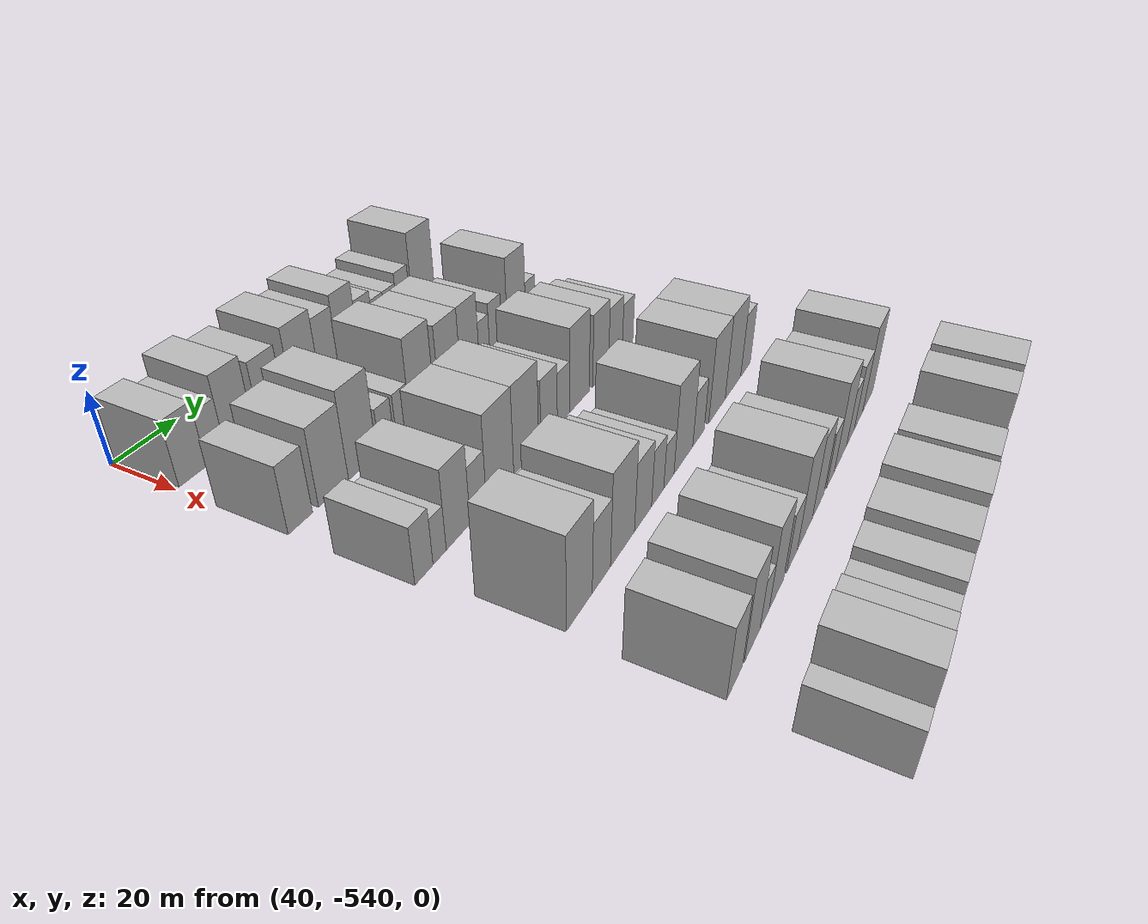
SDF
<sdf version="1.6">
 <world name="default">
  <model name="building_1">
   <static>1</static>
   <pose>50.0000 -534.7649 0 0.000000 0.000000 0.000000</pose>
   <link name="link">
    <pose>0 0 9.00 0 0 0</pose>
    <collision name="collision"><geometry><box><size>20.0000 8.4702 18.0000</size></box></geometry></collision>
    <visual name="visual">
     <cast_shadows>0</cast_shadows>
     <geometry><box><size>20.0000 8.4702 18.0000</size></box></geometry>
     <material>
      <script>
       <uri>model://HANNAS_wall/materials/scripts</uri>
       <uri>model://HANNAS_wall/materials/textures</uri>
       <name>vrc/HANNAS_wall</name>
      </script>
     </material>
    </visual>
   </link>
  </model>
  <model name="building_2">
   <static>1</static>
   <pose>50.0000 -527.4299 0 0.000000 0.000000 0.000000</pose>
   <link name="link">
    <pose>0 0 7.50 0 0 0</pose>
    <collision name="collision"><geometry><box><size>20.0000 6.1998 15.0000</size></box></geometry></collision>
    <visual name="visual">
     <cast_shadows>0</cast_shadows>
     <geometry><box><size>20.0000 6.1998 15.0000</size></box></geometry>
     <material>
      <script>
       <uri>model://HANNAS_wall/materials/scripts</uri>
       <uri>model://HANNAS_wall/materials/textures</uri>
       <name>vrc/HANNAS_wall</name>
      </script>
     </material>
    </visual>
   </link>
  </model>
  <model name="building_3">
   <static>1</static>
   <pose>50.0000 -519.6073 0 0.000000 0.000000 0.000000</pose>
   <link name="link">
    <pose>0 0 10.50 0 0 0</pose>
    <collision name="collision"><geometry><box><size>20.0000 9.4454 21.0000</size></box></geometry></collision>
    <visual name="visual">
     <cast_shadows>0</cast_shadows>
     <geometry><box><size>20.0000 9.4454 21.0000</size></box></geometry>
     <material>
      <script>
       <uri>model://HANNAS_wall/materials/scripts</uri>
       <uri>model://HANNAS_wall/materials/textures</uri>
       <name>vrc/HANNAS_wall</name>
      </script>
     </material>
    </visual>
   </link>
  </model>
  <model name="building_4">
   <static>1</static>
   <pose>50.0000 -508.4007 0 0.000000 0.000000 0.000000</pose>
   <link name="link">
    <pose>0 0 9.00 0 0 0</pose>
    <collision name="collision"><geometry><box><size>20.0000 8.9678 18.0000</size></box></geometry></collision>
    <visual name="visual">
     <cast_shadows>0</cast_shadows>
     <geometry><box><size>20.0000 8.9678 18.0000</size></box></geometry>
     <material>
      <script>
       <uri>model://HANNAS_wall/materials/scripts</uri>
       <uri>model://HANNAS_wall/materials/textures</uri>
       <name>vrc/HANNAS_wall</name>
      </script>
     </material>
    </visual>
   </link>
  </model>
  <model name="building_5">
   <static>1</static>
   <pose>50.0000 -495.6780 0 0.000000 0.000000 0.000000</pose>
   <link name="link">
    <pose>0 0 10.50 0 0 0</pose>
    <collision name="collision"><geometry><box><size>20.0000 10.4776 21.0000</size></box></geometry></collision>
    <visual name="visual">
     <cast_shadows>0</cast_shadows>
     <geometry><box><size>20.0000 10.4776 21.0000</size></box></geometry>
     <material>
      <script>
       <uri>model://HANNAS_wall/materials/scripts</uri>
       <uri>model://HANNAS_wall/materials/textures</uri>
       <name>vrc/HANNAS_wall</name>
      </script>
     </material>
    </visual>
   </link>
  </model>
  <model name="building_6">
   <static>1</static>
   <pose>50.0000 -486.5109 0 0.000000 0.000000 0.000000</pose>
   <link name="link">
    <pose>0 0 9.00 0 0 0</pose>
    <collision name="collision"><geometry><box><size>20.0000 7.8567 18.0000</size></box></geometry></collision>
    <visual name="visual">
     <cast_shadows>0</cast_shadows>
     <geometry><box><size>20.0000 7.8567 18.0000</size></box></geometry>
     <material>
      <script>
       <uri>model://HANNAS_wall/materials/scripts</uri>
       <uri>model://HANNAS_wall/materials/textures</uri>
       <name>vrc/HANNAS_wall</name>
      </script>
     </material>
    </visual>
   </link>
  </model>
  <model name="building_7">
   <static>1</static>
   <pose>50.0000 -478.2406 0 0.000000 0.000000 0.000000</pose>
   <link name="link">
    <pose>0 0 10.50 0 0 0</pose>
    <collision name="collision"><geometry><box><size>20.0000 8.6838 21.0000</size></box></geometry></collision>
    <visual name="visual">
     <cast_shadows>0</cast_shadows>
     <geometry><box><size>20.0000 8.6838 21.0000</size></box></geometry>
     <material>
      <script>
       <uri>model://HANNAS_wall/materials/scripts</uri>
       <uri>model://HANNAS_wall/materials/textures</uri>
       <name>vrc/HANNAS_wall</name>
      </script>
     </material>
    </visual>
   </link>
  </model>
  <model name="building_8">
   <static>1</static>
   <pose>50.0000 -470.4626 0 0.000000 0.000000 0.000000</pose>
   <link name="link">
    <pose>0 0 7.50 0 0 0</pose>
    <collision name="collision"><geometry><box><size>20.0000 6.8724 15.0000</size></box></geometry></collision>
    <visual name="visual">
     <cast_shadows>0</cast_shadows>
     <geometry><box><size>20.0000 6.8724 15.0000</size></box></geometry>
     <material>
      <script>
       <uri>model://HANNAS_wall/materials/scripts</uri>
       <uri>model://HANNAS_wall/materials/textures</uri>
       <name>vrc/HANNAS_wall</name>
      </script>
     </material>
    </visual>
   </link>
  </model>
  <model name="building_9">
   <static>1</static>
   <pose>50.0000 -464.2918 0 0.000000 0.000000 0.000000</pose>
   <link name="link">
    <pose>0 0 6.00 0 0 0</pose>
    <collision name="collision"><geometry><box><size>20.0000 5.4692 12.0000</size></box></geometry></collision>
    <visual name="visual">
     <cast_shadows>0</cast_shadows>
     <geometry><box><size>20.0000 5.4692 12.0000</size></box></geometry>
     <material>
      <script>
       <uri>model://HANNAS_wall/materials/scripts</uri>
       <uri>model://HANNAS_wall/materials/textures</uri>
       <name>vrc/HANNAS_wall</name>
      </script>
     </material>
    </visual>
   </link>
  </model>
  <model name="building_10">
   <static>1</static>
   <pose>50.0000 -458.6943 0 0.000000 0.000000 0.000000</pose>
   <link name="link">
    <pose>0 0 6.00 0 0 0</pose>
    <collision name="collision"><geometry><box><size>20.0000 5.7256 12.0000</size></box></geometry></collision>
    <visual name="visual">
     <cast_shadows>0</cast_shadows>
     <geometry><box><size>20.0000 5.7256 12.0000</size></box></geometry>
     <material>
      <script>
       <uri>model://HANNAS_wall/materials/scripts</uri>
       <uri>model://HANNAS_wall/materials/textures</uri>
       <name>vrc/HANNAS_wall</name>
      </script>
     </material>
    </visual>
   </link>
  </model>
  <model name="building_11">
   <static>1</static>
   <pose>50.0000 -452.7089 0 0.000000 0.000000 0.000000</pose>
   <link name="link">
    <pose>0 0 7.50 0 0 0</pose>
    <collision name="collision"><geometry><box><size>20.0000 6.2452 15.0000</size></box></geometry></collision>
    <visual name="visual">
     <cast_shadows>0</cast_shadows>
     <geometry><box><size>20.0000 6.2452 15.0000</size></box></geometry>
     <material>
      <script>
       <uri>model://HANNAS_wall/materials/scripts</uri>
       <uri>model://HANNAS_wall/materials/textures</uri>
       <name>vrc/HANNAS_wall</name>
      </script>
     </material>
    </visual>
   </link>
  </model>
  <model name="building_12">
   <static>1</static>
   <pose>50.0000 -442.9442 0 0.000000 0.000000 0.000000</pose>
   <link name="link">
    <pose>0 0 12.00 0 0 0</pose>
    <collision name="collision"><geometry><box><size>20.0000 11.2843 24.0000</size></box></geometry></collision>
    <visual name="visual">
     <cast_shadows>0</cast_shadows>
     <geometry><box><size>20.0000 11.2843 24.0000</size></box></geometry>
     <material>
      <script>
       <uri>model://HANNAS_wall/materials/scripts</uri>
       <uri>model://HANNAS_wall/materials/textures</uri>
       <name>vrc/HANNAS_wall</name>
      </script>
     </material>
    </visual>
   </link>
  </model>
  <model name="building_123">
   <static>1</static>
   <pose>82.0000 -536.0675 0 0.000000 0.000000 0.000000</pose>
   <link name="link">
    <pose>0 0 9.00 0 0 0</pose>
    <collision name="collision"><geometry><box><size>20.0000 7.8651 18.0000</size></box></geometry></collision>
    <visual name="visual">
     <cast_shadows>0</cast_shadows>
     <geometry><box><size>20.0000 7.8651 18.0000</size></box></geometry>
     <material>
      <script>
       <uri>model://HANNAS_wall/materials/scripts</uri>
       <uri>model://HANNAS_wall/materials/textures</uri>
       <name>vrc/HANNAS_wall</name>
      </script>
     </material>
    </visual>
   </link>
  </model>
  <model name="building_124">
   <static>1</static>
   <pose>82.0000 -524.9232 0 0.000000 0.000000 0.000000</pose>
   <link name="link">
    <pose>0 0 10.50 0 0 0</pose>
    <collision name="collision"><geometry><box><size>20.0000 10.4235 21.0000</size></box></geometry></collision>
    <visual name="visual">
     <cast_shadows>0</cast_shadows>
     <geometry><box><size>20.0000 10.4235 21.0000</size></box></geometry>
     <material>
      <script>
       <uri>model://HANNAS_wall/materials/scripts</uri>
       <uri>model://HANNAS_wall/materials/textures</uri>
       <name>vrc/HANNAS_wall</name>
      </script>
     </material>
    </visual>
   </link>
  </model>
  <model name="building_125">
   <static>1</static>
   <pose>82.0000 -514.4370 0 0.000000 0.000000 0.000000</pose>
   <link name="link">
    <pose>0 0 12.00 0 0 0</pose>
    <collision name="collision"><geometry><box><size>20.0000 10.5489 24.0000</size></box></geometry></collision>
    <visual name="visual">
     <cast_shadows>0</cast_shadows>
     <geometry><box><size>20.0000 10.5489 24.0000</size></box></geometry>
     <material>
      <script>
       <uri>model://HANNAS_wall/materials/scripts</uri>
       <uri>model://HANNAS_wall/materials/textures</uri>
       <name>vrc/HANNAS_wall</name>
      </script>
     </material>
    </visual>
   </link>
  </model>
  <model name="building_126">
   <static>1</static>
   <pose>82.0000 -505.3159 0 0.000000 0.000000 0.000000</pose>
   <link name="link">
    <pose>0 0 6.00 0 0 0</pose>
    <collision name="collision"><geometry><box><size>20.0000 5.6932 12.0000</size></box></geometry></collision>
    <visual name="visual">
     <cast_shadows>0</cast_shadows>
     <geometry><box><size>20.0000 5.6932 12.0000</size></box></geometry>
     <material>
      <script>
       <uri>model://HANNAS_wall/materials/scripts</uri>
       <uri>model://HANNAS_wall/materials/textures</uri>
       <name>vrc/HANNAS_wall</name>
      </script>
     </material>
    </visual>
   </link>
  </model>
  <model name="building_127">
   <static>1</static>
   <pose>82.0000 -498.5793 0 0.000000 0.000000 0.000000</pose>
   <link name="link">
    <pose>0 0 6.00 0 0 0</pose>
    <collision name="collision"><geometry><box><size>20.0000 5.7800 12.0000</size></box></geometry></collision>
    <visual name="visual">
     <cast_shadows>0</cast_shadows>
     <geometry><box><size>20.0000 5.7800 12.0000</size></box></geometry>
     <material>
      <script>
       <uri>model://HANNAS_wall/materials/scripts</uri>
       <uri>model://HANNAS_wall/materials/textures</uri>
       <name>vrc/HANNAS_wall</name>
      </script>
     </material>
    </visual>
   </link>
  </model>
  <model name="building_128">
   <static>1</static>
   <pose>82.0000 -490.4869 0 0.000000 0.000000 0.000000</pose>
   <link name="link">
    <pose>0 0 12.00 0 0 0</pose>
    <collision name="collision"><geometry><box><size>20.0000 10.4048 24.0000</size></box></geometry></collision>
    <visual name="visual">
     <cast_shadows>0</cast_shadows>
     <geometry><box><size>20.0000 10.4048 24.0000</size></box></geometry>
     <material>
      <script>
       <uri>model://HANNAS_wall/materials/scripts</uri>
       <uri>model://HANNAS_wall/materials/textures</uri>
       <name>vrc/HANNAS_wall</name>
      </script>
     </material>
    </visual>
   </link>
  </model>
  <model name="building_129">
   <static>1</static>
   <pose>82.0000 -478.2138 0 0.000000 0.000000 0.000000</pose>
   <link name="link">
    <pose>0 0 10.50 0 0 0</pose>
    <collision name="collision"><geometry><box><size>20.0000 10.1414 21.0000</size></box></geometry></collision>
    <visual name="visual">
     <cast_shadows>0</cast_shadows>
     <geometry><box><size>20.0000 10.1414 21.0000</size></box></geometry>
     <material>
      <script>
       <uri>model://HANNAS_wall/materials/scripts</uri>
       <uri>model://HANNAS_wall/materials/textures</uri>
       <name>vrc/HANNAS_wall</name>
      </script>
     </material>
    </visual>
   </link>
  </model>
  <model name="building_130">
   <static>1</static>
   <pose>82.0000 -468.5825 0 0.000000 0.000000 0.000000</pose>
   <link name="link">
    <pose>0 0 10.50 0 0 0</pose>
    <collision name="collision"><geometry><box><size>20.0000 9.1212 21.0000</size></box></geometry></collision>
    <visual name="visual">
     <cast_shadows>0</cast_shadows>
     <geometry><box><size>20.0000 9.1212 21.0000</size></box></geometry>
     <material>
      <script>
       <uri>model://HANNAS_wall/materials/scripts</uri>
       <uri>model://HANNAS_wall/materials/textures</uri>
       <name>vrc/HANNAS_wall</name>
      </script>
     </material>
    </visual>
   </link>
  </model>
  <model name="building_131">
   <static>1</static>
   <pose>82.0000 -461.3429 0 0.000000 0.000000 0.000000</pose>
   <link name="link">
    <pose>0 0 6.00 0 0 0</pose>
    <collision name="collision"><geometry><box><size>20.0000 5.3581 12.0000</size></box></geometry></collision>
    <visual name="visual">
     <cast_shadows>0</cast_shadows>
     <geometry><box><size>20.0000 5.3581 12.0000</size></box></geometry>
     <material>
      <script>
       <uri>model://HANNAS_wall/materials/scripts</uri>
       <uri>model://HANNAS_wall/materials/textures</uri>
       <name>vrc/HANNAS_wall</name>
      </script>
     </material>
    </visual>
   </link>
  </model>
  <model name="building_132">
   <static>1</static>
   <pose>82.0000 -455.4554 0 0.000000 0.000000 0.000000</pose>
   <link name="link">
    <pose>0 0 7.50 0 0 0</pose>
    <collision name="collision"><geometry><box><size>20.0000 6.4169 15.0000</size></box></geometry></collision>
    <visual name="visual">
     <cast_shadows>0</cast_shadows>
     <geometry><box><size>20.0000 6.4169 15.0000</size></box></geometry>
     <material>
      <script>
       <uri>model://HANNAS_wall/materials/scripts</uri>
       <uri>model://HANNAS_wall/materials/textures</uri>
       <name>vrc/HANNAS_wall</name>
      </script>
     </material>
    </visual>
   </link>
  </model>
  <model name="building_133">
   <static>1</static>
   <pose>82.0000 -444.1563 0 0.000000 0.000000 0.000000</pose>
   <link name="link">
    <pose>0 0 12.00 0 0 0</pose>
    <collision name="collision"><geometry><box><size>20.0000 10.1812 24.0000</size></box></geometry></collision>
    <visual name="visual">
     <cast_shadows>0</cast_shadows>
     <geometry><box><size>20.0000 10.1812 24.0000</size></box></geometry>
     <material>
      <script>
       <uri>model://HANNAS_wall/materials/scripts</uri>
       <uri>model://HANNAS_wall/materials/textures</uri>
       <name>vrc/HANNAS_wall</name>
      </script>
     </material>
    </visual>
   </link>
  </model>
  <model name="building_134">
   <static>1</static>
   <pose>82.0000 -436.1772 0 0.000000 0.000000 0.000000</pose>
   <link name="link">
    <pose>0 0 6.00 0 0 0</pose>
    <collision name="collision"><geometry><box><size>20.0000 5.7772 12.0000</size></box></geometry></collision>
    <visual name="visual">
     <cast_shadows>0</cast_shadows>
     <geometry><box><size>20.0000 5.7772 12.0000</size></box></geometry>
     <material>
      <script>
       <uri>model://HANNAS_wall/materials/scripts</uri>
       <uri>model://HANNAS_wall/materials/textures</uri>
       <name>vrc/HANNAS_wall</name>
      </script>
     </material>
    </visual>
   </link>
  </model>
  <model name="building_247">
   <static>1</static>
   <pose>114.0000 -536.8035 0 0.000000 0.000000 0.000000</pose>
   <link name="link">
    <pose>0 0 7.50 0 0 0</pose>
    <collision name="collision"><geometry><box><size>20.0000 6.3929 15.0000</size></box></geometry></collision>
    <visual name="visual">
     <cast_shadows>0</cast_shadows>
     <geometry><box><size>20.0000 6.3929 15.0000</size></box></geometry>
     <material>
      <script>
       <uri>model://HANNAS_wall/materials/scripts</uri>
       <uri>model://HANNAS_wall/materials/textures</uri>
       <name>vrc/HANNAS_wall</name>
      </script>
     </material>
    </visual>
   </link>
  </model>
  <model name="building_248">
   <static>1</static>
   <pose>114.0000 -531.1949 0 0.000000 0.000000 0.000000</pose>
   <link name="link">
    <pose>0 0 6.00 0 0 0</pose>
    <collision name="collision"><geometry><box><size>20.0000 4.8243 12.0000</size></box></geometry></collision>
    <visual name="visual">
     <cast_shadows>0</cast_shadows>
     <geometry><box><size>20.0000 4.8243 12.0000</size></box></geometry>
     <material>
      <script>
       <uri>model://HANNAS_wall/materials/scripts</uri>
       <uri>model://HANNAS_wall/materials/textures</uri>
       <name>vrc/HANNAS_wall</name>
      </script>
     </material>
    </visual>
   </link>
  </model>
  <model name="building_249">
   <static>1</static>
   <pose>114.0000 -524.1701 0 0.000000 0.000000 0.000000</pose>
   <link name="link">
    <pose>0 0 10.50 0 0 0</pose>
    <collision name="collision"><geometry><box><size>20.0000 9.2253 21.0000</size></box></geometry></collision>
    <visual name="visual">
     <cast_shadows>0</cast_shadows>
     <geometry><box><size>20.0000 9.2253 21.0000</size></box></geometry>
     <material>
      <script>
       <uri>model://HANNAS_wall/materials/scripts</uri>
       <uri>model://HANNAS_wall/materials/textures</uri>
       <name>vrc/HANNAS_wall</name>
      </script>
     </material>
    </visual>
   </link>
  </model>
  <model name="building_250">
   <static>1</static>
   <pose>114.0000 -516.2463 0 0.000000 0.000000 0.000000</pose>
   <link name="link">
    <pose>0 0 7.50 0 0 0</pose>
    <collision name="collision"><geometry><box><size>20.0000 6.6223 15.0000</size></box></geometry></collision>
    <visual name="visual">
     <cast_shadows>0</cast_shadows>
     <geometry><box><size>20.0000 6.6223 15.0000</size></box></geometry>
     <material>
      <script>
       <uri>model://HANNAS_wall/materials/scripts</uri>
       <uri>model://HANNAS_wall/materials/textures</uri>
       <name>vrc/HANNAS_wall</name>
      </script>
     </material>
    </visual>
   </link>
  </model>
  <model name="building_251">
   <static>1</static>
   <pose>114.0000 -507.0250 0 0.000000 0.000000 0.000000</pose>
   <link name="link">
    <pose>0 0 12.00 0 0 0</pose>
    <collision name="collision"><geometry><box><size>20.0000 11.8203 24.0000</size></box></geometry></collision>
    <visual name="visual">
     <cast_shadows>0</cast_shadows>
     <geometry><box><size>20.0000 11.8203 24.0000</size></box></geometry>
     <material>
      <script>
       <uri>model://HANNAS_wall/materials/scripts</uri>
       <uri>model://HANNAS_wall/materials/textures</uri>
       <name>vrc/HANNAS_wall</name>
      </script>
     </material>
    </visual>
   </link>
  </model>
  <model name="building_252">
   <static>1</static>
   <pose>114.0000 -495.2573 0 0.000000 0.000000 0.000000</pose>
   <link name="link">
    <pose>0 0 12.00 0 0 0</pose>
    <collision name="collision"><geometry><box><size>20.0000 11.7150 24.0000</size></box></geometry></collision>
    <visual name="visual">
     <cast_shadows>0</cast_shadows>
     <geometry><box><size>20.0000 11.7150 24.0000</size></box></geometry>
     <material>
      <script>
       <uri>model://HANNAS_wall/materials/scripts</uri>
       <uri>model://HANNAS_wall/materials/textures</uri>
       <name>vrc/HANNAS_wall</name>
      </script>
     </material>
    </visual>
   </link>
  </model>
  <model name="building_253">
   <static>1</static>
   <pose>114.0000 -484.2679 0 0.000000 0.000000 0.000000</pose>
   <link name="link">
    <pose>0 0 9.00 0 0 0</pose>
    <collision name="collision"><geometry><box><size>20.0000 8.2638 18.0000</size></box></geometry></collision>
    <visual name="visual">
     <cast_shadows>0</cast_shadows>
     <geometry><box><size>20.0000 8.2638 18.0000</size></box></geometry>
     <material>
      <script>
       <uri>model://HANNAS_wall/materials/scripts</uri>
       <uri>model://HANNAS_wall/materials/textures</uri>
       <name>vrc/HANNAS_wall</name>
      </script>
     </material>
    </visual>
   </link>
  </model>
  <model name="building_254">
   <static>1</static>
   <pose>114.0000 -476.9178 0 0.000000 0.000000 0.000000</pose>
   <link name="link">
    <pose>0 0 7.50 0 0 0</pose>
    <collision name="collision"><geometry><box><size>20.0000 6.4365 15.0000</size></box></geometry></collision>
    <visual name="visual">
     <cast_shadows>0</cast_shadows>
     <geometry><box><size>20.0000 6.4365 15.0000</size></box></geometry>
     <material>
      <script>
       <uri>model://HANNAS_wall/materials/scripts</uri>
       <uri>model://HANNAS_wall/materials/textures</uri>
       <name>vrc/HANNAS_wall</name>
      </script>
     </material>
    </visual>
   </link>
  </model>
  <model name="building_255">
   <static>1</static>
   <pose>114.0000 -468.2805 0 0.000000 0.000000 0.000000</pose>
   <link name="link">
    <pose>0 0 12.00 0 0 0</pose>
    <collision name="collision"><geometry><box><size>20.0000 10.8380 24.0000</size></box></geometry></collision>
    <visual name="visual">
     <cast_shadows>0</cast_shadows>
     <geometry><box><size>20.0000 10.8380 24.0000</size></box></geometry>
     <material>
      <script>
       <uri>model://HANNAS_wall/materials/scripts</uri>
       <uri>model://HANNAS_wall/materials/textures</uri>
       <name>vrc/HANNAS_wall</name>
      </script>
     </material>
    </visual>
   </link>
  </model>
  <model name="building_256">
   <static>1</static>
   <pose>114.0000 -456.1677 0 0.000000 0.000000 0.000000</pose>
   <link name="link">
    <pose>0 0 10.50 0 0 0</pose>
    <collision name="collision"><geometry><box><size>20.0000 9.3876 21.0000</size></box></geometry></collision>
    <visual name="visual">
     <cast_shadows>0</cast_shadows>
     <geometry><box><size>20.0000 9.3876 21.0000</size></box></geometry>
     <material>
      <script>
       <uri>model://HANNAS_wall/materials/scripts</uri>
       <uri>model://HANNAS_wall/materials/textures</uri>
       <name>vrc/HANNAS_wall</name>
      </script>
     </material>
    </visual>
   </link>
  </model>
  <model name="building_257">
   <static>1</static>
   <pose>114.0000 -447.2284 0 0.000000 0.000000 0.000000</pose>
   <link name="link">
    <pose>0 0 9.00 0 0 0</pose>
    <collision name="collision"><geometry><box><size>20.0000 8.4909 18.0000</size></box></geometry></collision>
    <visual name="visual">
     <cast_shadows>0</cast_shadows>
     <geometry><box><size>20.0000 8.4909 18.0000</size></box></geometry>
     <material>
      <script>
       <uri>model://HANNAS_wall/materials/scripts</uri>
       <uri>model://HANNAS_wall/materials/textures</uri>
       <name>vrc/HANNAS_wall</name>
      </script>
     </material>
    </visual>
   </link>
  </model>
  <model name="building_258">
   <static>1</static>
   <pose>114.0000 -439.5419 0 0.000000 0.000000 0.000000</pose>
   <link name="link">
    <pose>0 0 7.50 0 0 0</pose>
    <collision name="collision"><geometry><box><size>20.0000 6.8819 15.0000</size></box></geometry></collision>
    <visual name="visual">
     <cast_shadows>0</cast_shadows>
     <geometry><box><size>20.0000 6.8819 15.0000</size></box></geometry>
     <material>
      <script>
       <uri>model://HANNAS_wall/materials/scripts</uri>
       <uri>model://HANNAS_wall/materials/textures</uri>
       <name>vrc/HANNAS_wall</name>
      </script>
     </material>
    </visual>
   </link>
  </model>
  <model name="building_373">
   <static>1</static>
   <pose>146.0000 -531.4832 0 0.000000 0.000000 0.000000</pose>
   <link name="link">
    <pose>0 0 12.00 0 0 0</pose>
    <collision name="collision"><geometry><box><size>20.0000 11.0336 24.0000</size></box></geometry></collision>
    <visual name="visual">
     <cast_shadows>0</cast_shadows>
     <geometry><box><size>20.0000 11.0336 24.0000</size></box></geometry>
     <material>
      <script>
       <uri>model://HANNAS_wall/materials/scripts</uri>
       <uri>model://HANNAS_wall/materials/textures</uri>
       <name>vrc/HANNAS_wall</name>
      </script>
     </material>
    </visual>
   </link>
  </model>
  <model name="building_374">
   <static>1</static>
   <pose>146.0000 -521.8300 0 0.000000 0.000000 0.000000</pose>
   <link name="link">
    <pose>0 0 9.00 0 0 0</pose>
    <collision name="collision"><geometry><box><size>20.0000 8.2729 18.0000</size></box></geometry></collision>
    <visual name="visual">
     <cast_shadows>0</cast_shadows>
     <geometry><box><size>20.0000 8.2729 18.0000</size></box></geometry>
     <material>
      <script>
       <uri>model://HANNAS_wall/materials/scripts</uri>
       <uri>model://HANNAS_wall/materials/textures</uri>
       <name>vrc/HANNAS_wall</name>
      </script>
     </material>
    </visual>
   </link>
  </model>
  <model name="building_375">
   <static>1</static>
   <pose>146.0000 -511.8132 0 0.000000 0.000000 0.000000</pose>
   <link name="link">
    <pose>0 0 12.00 0 0 0</pose>
    <collision name="collision"><geometry><box><size>20.0000 11.7607 24.0000</size></box></geometry></collision>
    <visual name="visual">
     <cast_shadows>0</cast_shadows>
     <geometry><box><size>20.0000 11.7607 24.0000</size></box></geometry>
     <material>
      <script>
       <uri>model://HANNAS_wall/materials/scripts</uri>
       <uri>model://HANNAS_wall/materials/textures</uri>
       <name>vrc/HANNAS_wall</name>
      </script>
     </material>
    </visual>
   </link>
  </model>
  <model name="building_376">
   <static>1</static>
   <pose>146.0000 -501.4531 0 0.000000 0.000000 0.000000</pose>
   <link name="link">
    <pose>0 0 9.00 0 0 0</pose>
    <collision name="collision"><geometry><box><size>20.0000 8.9595 18.0000</size></box></geometry></collision>
    <visual name="visual">
     <cast_shadows>0</cast_shadows>
     <geometry><box><size>20.0000 8.9595 18.0000</size></box></geometry>
     <material>
      <script>
       <uri>model://HANNAS_wall/materials/scripts</uri>
       <uri>model://HANNAS_wall/materials/textures</uri>
       <name>vrc/HANNAS_wall</name>
      </script>
     </material>
    </visual>
   </link>
  </model>
  <model name="building_377">
   <static>1</static>
   <pose>146.0000 -493.5754 0 0.000000 0.000000 0.000000</pose>
   <link name="link">
    <pose>0 0 7.50 0 0 0</pose>
    <collision name="collision"><geometry><box><size>20.0000 6.7960 15.0000</size></box></geometry></collision>
    <visual name="visual">
     <cast_shadows>0</cast_shadows>
     <geometry><box><size>20.0000 6.7960 15.0000</size></box></geometry>
     <material>
      <script>
       <uri>model://HANNAS_wall/materials/scripts</uri>
       <uri>model://HANNAS_wall/materials/textures</uri>
       <name>vrc/HANNAS_wall</name>
      </script>
     </material>
    </visual>
   </link>
  </model>
  <model name="building_378">
   <static>1</static>
   <pose>146.0000 -487.1990 0 0.000000 0.000000 0.000000</pose>
   <link name="link">
    <pose>0 0 6.00 0 0 0</pose>
    <collision name="collision"><geometry><box><size>20.0000 5.9569 12.0000</size></box></geometry></collision>
    <visual name="visual">
     <cast_shadows>0</cast_shadows>
     <geometry><box><size>20.0000 5.9569 12.0000</size></box></geometry>
     <material>
      <script>
       <uri>model://HANNAS_wall/materials/scripts</uri>
       <uri>model://HANNAS_wall/materials/textures</uri>
       <name>vrc/HANNAS_wall</name>
      </script>
     </material>
    </visual>
   </link>
  </model>
  <model name="building_379">
   <static>1</static>
   <pose>146.0000 -478.4581 0 0.000000 0.000000 0.000000</pose>
   <link name="link">
    <pose>0 0 12.00 0 0 0</pose>
    <collision name="collision"><geometry><box><size>20.0000 11.5248 24.0000</size></box></geometry></collision>
    <visual name="visual">
     <cast_shadows>0</cast_shadows>
     <geometry><box><size>20.0000 11.5248 24.0000</size></box></geometry>
     <material>
      <script>
       <uri>model://HANNAS_wall/materials/scripts</uri>
       <uri>model://HANNAS_wall/materials/textures</uri>
       <name>vrc/HANNAS_wall</name>
      </script>
     </material>
    </visual>
   </link>
  </model>
  <model name="building_380">
   <static>1</static>
   <pose>146.0000 -468.9826 0 0.000000 0.000000 0.000000</pose>
   <link name="link">
    <pose>0 0 7.50 0 0 0</pose>
    <collision name="collision"><geometry><box><size>20.0000 7.4263 15.0000</size></box></geometry></collision>
    <visual name="visual">
     <cast_shadows>0</cast_shadows>
     <geometry><box><size>20.0000 7.4263 15.0000</size></box></geometry>
     <material>
      <script>
       <uri>model://HANNAS_wall/materials/scripts</uri>
       <uri>model://HANNAS_wall/materials/textures</uri>
       <name>vrc/HANNAS_wall</name>
      </script>
     </material>
    </visual>
   </link>
  </model>
  <model name="building_381">
   <static>1</static>
   <pose>146.0000 -456.4423 0 0.000000 0.000000 0.000000</pose>
   <link name="link">
    <pose>0 0 12.00 0 0 0</pose>
    <collision name="collision"><geometry><box><size>20.0000 11.6545 24.0000</size></box></geometry></collision>
    <visual name="visual">
     <cast_shadows>0</cast_shadows>
     <geometry><box><size>20.0000 11.6545 24.0000</size></box></geometry>
     <material>
      <script>
       <uri>model://HANNAS_wall/materials/scripts</uri>
       <uri>model://HANNAS_wall/materials/textures</uri>
       <name>vrc/HANNAS_wall</name>
      </script>
     </material>
    </visual>
   </link>
  </model>
  <model name="building_382">
   <static>1</static>
   <pose>146.0000 -444.7440 0 0.000000 0.000000 0.000000</pose>
   <link name="link">
    <pose>0 0 12.00 0 0 0</pose>
    <collision name="collision"><geometry><box><size>20.0000 11.7420 24.0000</size></box></geometry></collision>
    <visual name="visual">
     <cast_shadows>0</cast_shadows>
     <geometry><box><size>20.0000 11.7420 24.0000</size></box></geometry>
     <material>
      <script>
       <uri>model://HANNAS_wall/materials/scripts</uri>
       <uri>model://HANNAS_wall/materials/textures</uri>
       <name>vrc/HANNAS_wall</name>
      </script>
     </material>
    </visual>
   </link>
  </model>
  <model name="building_383">
   <static>1</static>
   <pose>146.0000 -435.0840 0 0.000000 0.000000 0.000000</pose>
   <link name="link">
    <pose>0 0 9.00 0 0 0</pose>
    <collision name="collision"><geometry><box><size>20.0000 7.5781 18.0000</size></box></geometry></collision>
    <visual name="visual">
     <cast_shadows>0</cast_shadows>
     <geometry><box><size>20.0000 7.5781 18.0000</size></box></geometry>
     <material>
      <script>
       <uri>model://HANNAS_wall/materials/scripts</uri>
       <uri>model://HANNAS_wall/materials/textures</uri>
       <name>vrc/HANNAS_wall</name>
      </script>
     </material>
    </visual>
   </link>
  </model>
  <model name="building_483">
   <static>1</static>
   <pose>178.0000 -533.8310 0 0.000000 0.000000 0.000000</pose>
   <link name="link">
    <pose>0 0 9.00 0 0 0</pose>
    <collision name="collision"><geometry><box><size>20.0000 8.3381 18.0000</size></box></geometry></collision>
    <visual name="visual">
     <cast_shadows>0</cast_shadows>
     <geometry><box><size>20.0000 8.3381 18.0000</size></box></geometry>
     <material>
      <script>
       <uri>model://HANNAS_wall/materials/scripts</uri>
       <uri>model://HANNAS_wall/materials/textures</uri>
       <name>vrc/HANNAS_wall</name>
      </script>
     </material>
    </visual>
   </link>
  </model>
  <model name="building_484">
   <static>1</static>
   <pose>178.0000 -524.2179 0 0.000000 0.000000 0.000000</pose>
   <link name="link">
    <pose>0 0 10.50 0 0 0</pose>
    <collision name="collision"><geometry><box><size>20.0000 8.8881 21.0000</size></box></geometry></collision>
    <visual name="visual">
     <cast_shadows>0</cast_shadows>
     <geometry><box><size>20.0000 8.8881 21.0000</size></box></geometry>
     <material>
      <script>
       <uri>model://HANNAS_wall/materials/scripts</uri>
       <uri>model://HANNAS_wall/materials/textures</uri>
       <name>vrc/HANNAS_wall</name>
      </script>
     </material>
    </visual>
   </link>
  </model>
  <model name="building_485">
   <static>1</static>
   <pose>178.0000 -517.0210 0 0.000000 0.000000 0.000000</pose>
   <link name="link">
    <pose>0 0 6.00 0 0 0</pose>
    <collision name="collision"><geometry><box><size>20.0000 5.5055 12.0000</size></box></geometry></collision>
    <visual name="visual">
     <cast_shadows>0</cast_shadows>
     <geometry><box><size>20.0000 5.5055 12.0000</size></box></geometry>
     <material>
      <script>
       <uri>model://HANNAS_wall/materials/scripts</uri>
       <uri>model://HANNAS_wall/materials/textures</uri>
       <name>vrc/HANNAS_wall</name>
      </script>
     </material>
    </visual>
   </link>
  </model>
  <model name="building_486">
   <static>1</static>
   <pose>178.0000 -509.6315 0 0.000000 0.000000 0.000000</pose>
   <link name="link">
    <pose>0 0 10.50 0 0 0</pose>
    <collision name="collision"><geometry><box><size>20.0000 9.2734 21.0000</size></box></geometry></collision>
    <visual name="visual">
     <cast_shadows>0</cast_shadows>
     <geometry><box><size>20.0000 9.2734 21.0000</size></box></geometry>
     <material>
      <script>
       <uri>model://HANNAS_wall/materials/scripts</uri>
       <uri>model://HANNAS_wall/materials/textures</uri>
       <name>vrc/HANNAS_wall</name>
      </script>
     </material>
    </visual>
   </link>
  </model>
  <model name="building_487">
   <static>1</static>
   <pose>178.0000 -499.3168 0 0.000000 0.000000 0.000000</pose>
   <link name="link">
    <pose>0 0 7.50 0 0 0</pose>
    <collision name="collision"><geometry><box><size>20.0000 7.3560 15.0000</size></box></geometry></collision>
    <visual name="visual">
     <cast_shadows>0</cast_shadows>
     <geometry><box><size>20.0000 7.3560 15.0000</size></box></geometry>
     <material>
      <script>
       <uri>model://HANNAS_wall/materials/scripts</uri>
       <uri>model://HANNAS_wall/materials/textures</uri>
       <name>vrc/HANNAS_wall</name>
      </script>
     </material>
    </visual>
   </link>
  </model>
  <model name="building_488">
   <static>1</static>
   <pose>178.0000 -490.1928 0 0.000000 0.000000 0.000000</pose>
   <link name="link">
    <pose>0 0 12.00 0 0 0</pose>
    <collision name="collision"><geometry><box><size>20.0000 10.8920 24.0000</size></box></geometry></collision>
    <visual name="visual">
     <cast_shadows>0</cast_shadows>
     <geometry><box><size>20.0000 10.8920 24.0000</size></box></geometry>
     <material>
      <script>
       <uri>model://HANNAS_wall/materials/scripts</uri>
       <uri>model://HANNAS_wall/materials/textures</uri>
       <name>vrc/HANNAS_wall</name>
      </script>
     </material>
    </visual>
   </link>
  </model>
  <model name="building_489">
   <static>1</static>
   <pose>178.0000 -480.1021 0 0.000000 0.000000 0.000000</pose>
   <link name="link">
    <pose>0 0 10.50 0 0 0</pose>
    <collision name="collision"><geometry><box><size>20.0000 9.2893 21.0000</size></box></geometry></collision>
    <visual name="visual">
     <cast_shadows>0</cast_shadows>
     <geometry><box><size>20.0000 9.2893 21.0000</size></box></geometry>
     <material>
      <script>
       <uri>model://HANNAS_wall/materials/scripts</uri>
       <uri>model://HANNAS_wall/materials/textures</uri>
       <name>vrc/HANNAS_wall</name>
      </script>
     </material>
    </visual>
   </link>
  </model>
  <model name="building_490">
   <static>1</static>
   <pose>178.0000 -470.1048 0 0.000000 0.000000 0.000000</pose>
   <link name="link">
    <pose>0 0 7.50 0 0 0</pose>
    <collision name="collision"><geometry><box><size>20.0000 6.7054 15.0000</size></box></geometry></collision>
    <visual name="visual">
     <cast_shadows>0</cast_shadows>
     <geometry><box><size>20.0000 6.7054 15.0000</size></box></geometry>
     <material>
      <script>
       <uri>model://HANNAS_wall/materials/scripts</uri>
       <uri>model://HANNAS_wall/materials/textures</uri>
       <name>vrc/HANNAS_wall</name>
      </script>
     </material>
    </visual>
   </link>
  </model>
  <model name="building_491">
   <static>1</static>
   <pose>178.0000 -461.3218 0 0.000000 0.000000 0.000000</pose>
   <link name="link">
    <pose>0 0 12.00 0 0 0</pose>
    <collision name="collision"><geometry><box><size>20.0000 10.8605 24.0000</size></box></geometry></collision>
    <visual name="visual">
     <cast_shadows>0</cast_shadows>
     <geometry><box><size>20.0000 10.8605 24.0000</size></box></geometry>
     <material>
      <script>
       <uri>model://HANNAS_wall/materials/scripts</uri>
       <uri>model://HANNAS_wall/materials/textures</uri>
       <name>vrc/HANNAS_wall</name>
      </script>
     </material>
    </visual>
   </link>
  </model>
  <model name="building_492">
   <static>1</static>
   <pose>178.0000 -452.3043 0 0.000000 0.000000 0.000000</pose>
   <link name="link">
    <pose>0 0 7.50 0 0 0</pose>
    <collision name="collision"><geometry><box><size>20.0000 7.1746 15.0000</size></box></geometry></collision>
    <visual name="visual">
     <cast_shadows>0</cast_shadows>
     <geometry><box><size>20.0000 7.1746 15.0000</size></box></geometry>
     <material>
      <script>
       <uri>model://HANNAS_wall/materials/scripts</uri>
       <uri>model://HANNAS_wall/materials/textures</uri>
       <name>vrc/HANNAS_wall</name>
      </script>
     </material>
    </visual>
   </link>
  </model>
  <model name="building_493">
   <static>1</static>
   <pose>178.0000 -444.5192 0 0.000000 0.000000 0.000000</pose>
   <link name="link">
    <pose>0 0 9.00 0 0 0</pose>
    <collision name="collision"><geometry><box><size>20.0000 8.3955 18.0000</size></box></geometry></collision>
    <visual name="visual">
     <cast_shadows>0</cast_shadows>
     <geometry><box><size>20.0000 8.3955 18.0000</size></box></geometry>
     <material>
      <script>
       <uri>model://HANNAS_wall/materials/scripts</uri>
       <uri>model://HANNAS_wall/materials/textures</uri>
       <name>vrc/HANNAS_wall</name>
      </script>
     </material>
    </visual>
   </link>
  </model>
  <model name="building_494">
   <static>1</static>
   <pose>178.0000 -434.8717 0 0.000000 0.000000 0.000000</pose>
   <link name="link">
    <pose>0 0 12.00 0 0 0</pose>
    <collision name="collision"><geometry><box><size>20.0000 10.8996 24.0000</size></box></geometry></collision>
    <visual name="visual">
     <cast_shadows>0</cast_shadows>
     <geometry><box><size>20.0000 10.8996 24.0000</size></box></geometry>
     <material>
      <script>
       <uri>model://HANNAS_wall/materials/scripts</uri>
       <uri>model://HANNAS_wall/materials/textures</uri>
       <name>vrc/HANNAS_wall</name>
      </script>
     </material>
    </visual>
   </link>
  </model>
  <model name="building_603">
   <static>1</static>
   <pose>210.0000 -536.4538 0 0.000000 0.000000 0.000000</pose>
   <link name="link">
    <pose>0 0 6.00 0 0 0</pose>
    <collision name="collision"><geometry><box><size>20.0000 5.0925 12.0000</size></box></geometry></collision>
    <visual name="visual">
     <cast_shadows>0</cast_shadows>
     <geometry><box><size>20.0000 5.0925 12.0000</size></box></geometry>
     <material>
      <script>
       <uri>model://HANNAS_wall/materials/scripts</uri>
       <uri>model://HANNAS_wall/materials/textures</uri>
       <name>vrc/HANNAS_wall</name>
      </script>
     </material>
    </visual>
   </link>
  </model>
  <model name="building_604">
   <static>1</static>
   <pose>210.0000 -529.4962 0 0.000000 0.000000 0.000000</pose>
   <link name="link">
    <pose>0 0 10.50 0 0 0</pose>
    <collision name="collision"><geometry><box><size>20.0000 8.8227 21.0000</size></box></geometry></collision>
    <visual name="visual">
     <cast_shadows>0</cast_shadows>
     <geometry><box><size>20.0000 8.8227 21.0000</size></box></geometry>
     <material>
      <script>
       <uri>model://HANNAS_wall/materials/scripts</uri>
       <uri>model://HANNAS_wall/materials/textures</uri>
       <name>vrc/HANNAS_wall</name>
      </script>
     </material>
    </visual>
   </link>
  </model>
  <model name="building_605">
   <static>1</static>
   <pose>210.0000 -521.2705 0 0.000000 0.000000 0.000000</pose>
   <link name="link">
    <pose>0 0 9.00 0 0 0</pose>
    <collision name="collision"><geometry><box><size>20.0000 7.6288 18.0000</size></box></geometry></collision>
    <visual name="visual">
     <cast_shadows>0</cast_shadows>
     <geometry><box><size>20.0000 7.6288 18.0000</size></box></geometry>
     <material>
      <script>
       <uri>model://HANNAS_wall/materials/scripts</uri>
       <uri>model://HANNAS_wall/materials/textures</uri>
       <name>vrc/HANNAS_wall</name>
      </script>
     </material>
    </visual>
   </link>
  </model>
  <model name="building_606">
   <static>1</static>
   <pose>210.0000 -513.0599 0 0.000000 0.000000 0.000000</pose>
   <link name="link">
    <pose>0 0 7.50 0 0 0</pose>
    <collision name="collision"><geometry><box><size>20.0000 6.7924 15.0000</size></box></geometry></collision>
    <visual name="visual">
     <cast_shadows>0</cast_shadows>
     <geometry><box><size>20.0000 6.7924 15.0000</size></box></geometry>
     <material>
      <script>
       <uri>model://HANNAS_wall/materials/scripts</uri>
       <uri>model://HANNAS_wall/materials/textures</uri>
       <name>vrc/HANNAS_wall</name>
      </script>
     </material>
    </visual>
   </link>
  </model>
  <model name="building_607">
   <static>1</static>
   <pose>210.0000 -505.6244 0 0.000000 0.000000 0.000000</pose>
   <link name="link">
    <pose>0 0 9.00 0 0 0</pose>
    <collision name="collision"><geometry><box><size>20.0000 8.0787 18.0000</size></box></geometry></collision>
    <visual name="visual">
     <cast_shadows>0</cast_shadows>
     <geometry><box><size>20.0000 8.0787 18.0000</size></box></geometry>
     <material>
      <script>
       <uri>model://HANNAS_wall/materials/scripts</uri>
       <uri>model://HANNAS_wall/materials/textures</uri>
       <name>vrc/HANNAS_wall</name>
      </script>
     </material>
    </visual>
   </link>
  </model>
  <model name="building_608">
   <static>1</static>
   <pose>210.0000 -496.4598 0 0.000000 0.000000 0.000000</pose>
   <link name="link">
    <pose>0 0 10.50 0 0 0</pose>
    <collision name="collision"><geometry><box><size>20.0000 10.2503 21.0000</size></box></geometry></collision>
    <visual name="visual">
     <cast_shadows>0</cast_shadows>
     <geometry><box><size>20.0000 10.2503 21.0000</size></box></geometry>
     <material>
      <script>
       <uri>model://HANNAS_wall/materials/scripts</uri>
       <uri>model://HANNAS_wall/materials/textures</uri>
       <name>vrc/HANNAS_wall</name>
      </script>
     </material>
    </visual>
   </link>
  </model>
  <model name="building_609">
   <static>1</static>
   <pose>210.0000 -485.8815 0 0.000000 0.000000 0.000000</pose>
   <link name="link">
    <pose>0 0 12.00 0 0 0</pose>
    <collision name="collision"><geometry><box><size>20.0000 10.9064 24.0000</size></box></geometry></collision>
    <visual name="visual">
     <cast_shadows>0</cast_shadows>
     <geometry><box><size>20.0000 10.9064 24.0000</size></box></geometry>
     <material>
      <script>
       <uri>model://HANNAS_wall/materials/scripts</uri>
       <uri>model://HANNAS_wall/materials/textures</uri>
       <name>vrc/HANNAS_wall</name>
      </script>
     </material>
    </visual>
   </link>
  </model>
  <model name="building_610">
   <static>1</static>
   <pose>210.0000 -477.3376 0 0.000000 0.000000 0.000000</pose>
   <link name="link">
    <pose>0 0 7.50 0 0 0</pose>
    <collision name="collision"><geometry><box><size>20.0000 6.1812 15.0000</size></box></geometry></collision>
    <visual name="visual">
     <cast_shadows>0</cast_shadows>
     <geometry><box><size>20.0000 6.1812 15.0000</size></box></geometry>
     <material>
      <script>
       <uri>model://HANNAS_wall/materials/scripts</uri>
       <uri>model://HANNAS_wall/materials/textures</uri>
       <name>vrc/HANNAS_wall</name>
      </script>
     </material>
    </visual>
   </link>
  </model>
  <model name="building_611">
   <static>1</static>
   <pose>210.0000 -469.0263 0 0.000000 0.000000 0.000000</pose>
   <link name="link">
    <pose>0 0 10.50 0 0 0</pose>
    <collision name="collision"><geometry><box><size>20.0000 10.4415 21.0000</size></box></geometry></collision>
    <visual name="visual">
     <cast_shadows>0</cast_shadows>
     <geometry><box><size>20.0000 10.4415 21.0000</size></box></geometry>
     <material>
      <script>
       <uri>model://HANNAS_wall/materials/scripts</uri>
       <uri>model://HANNAS_wall/materials/textures</uri>
       <name>vrc/HANNAS_wall</name>
      </script>
     </material>
    </visual>
   </link>
  </model>
  <model name="building_612">
   <static>1</static>
   <pose>210.0000 -460.7118 0 0.000000 0.000000 0.000000</pose>
   <link name="link">
    <pose>0 0 7.50 0 0 0</pose>
    <collision name="collision"><geometry><box><size>20.0000 6.1874 15.0000</size></box></geometry></collision>
    <visual name="visual">
     <cast_shadows>0</cast_shadows>
     <geometry><box><size>20.0000 6.1874 15.0000</size></box></geometry>
     <material>
      <script>
       <uri>model://HANNAS_wall/materials/scripts</uri>
       <uri>model://HANNAS_wall/materials/textures</uri>
       <name>vrc/HANNAS_wall</name>
      </script>
     </material>
    </visual>
   </link>
  </model>
  <model name="building_613">
   <static>1</static>
   <pose>210.0000 -449.7360 0 0.000000 0.000000 0.000000</pose>
   <link name="link">
    <pose>0 0 12.00 0 0 0</pose>
    <collision name="collision"><geometry><box><size>20.0000 9.7643 24.0000</size></box></geometry></collision>
    <visual name="visual">
     <cast_shadows>0</cast_shadows>
     <geometry><box><size>20.0000 9.7643 24.0000</size></box></geometry>
     <material>
      <script>
       <uri>model://HANNAS_wall/materials/scripts</uri>
       <uri>model://HANNAS_wall/materials/textures</uri>
       <name>vrc/HANNAS_wall</name>
      </script>
     </material>
    </visual>
   </link>
  </model>
  <model name="building_614">
   <static>1</static>
   <pose>210.0000 -436.0699 0 0.000000 0.000000 0.000000</pose>
   <link name="link">
    <pose>0 0 12.00 0 0 0</pose>
    <collision name="collision"><geometry><box><size>20.0000 11.5679 24.0000</size></box></geometry></collision>
    <visual name="visual">
     <cast_shadows>0</cast_shadows>
     <geometry><box><size>20.0000 11.5679 24.0000</size></box></geometry>
     <material>
      <script>
       <uri>model://HANNAS_wall/materials/scripts</uri>
       <uri>model://HANNAS_wall/materials/textures</uri>
       <name>vrc/HANNAS_wall</name>
      </script>
     </material>
    </visual>
   </link>
  </model>
 </world>
</sdf>
